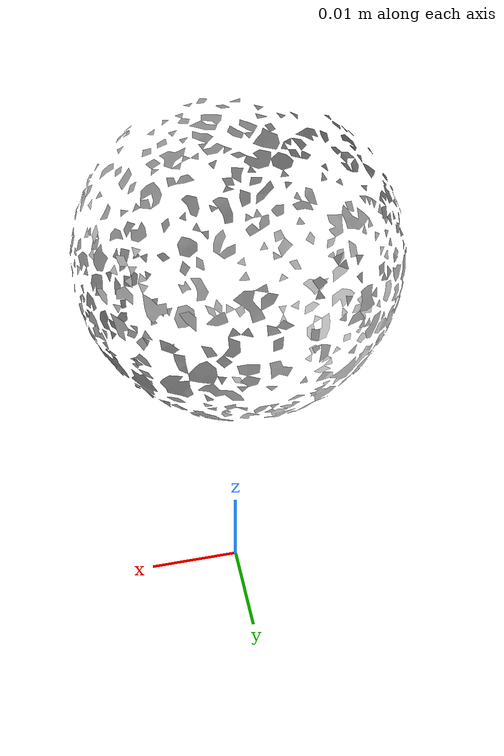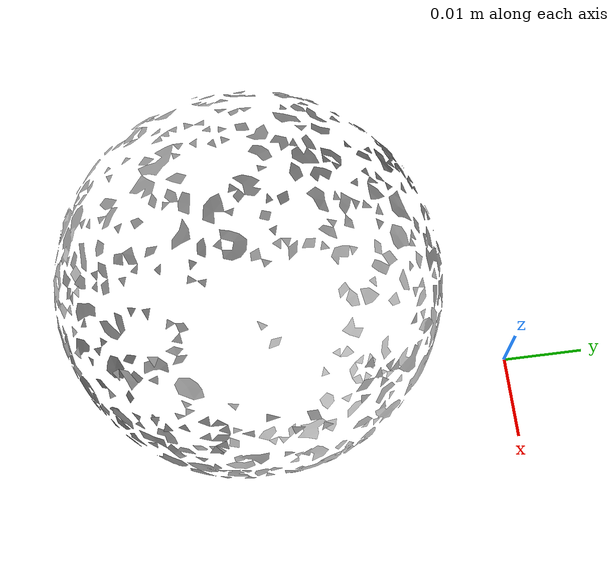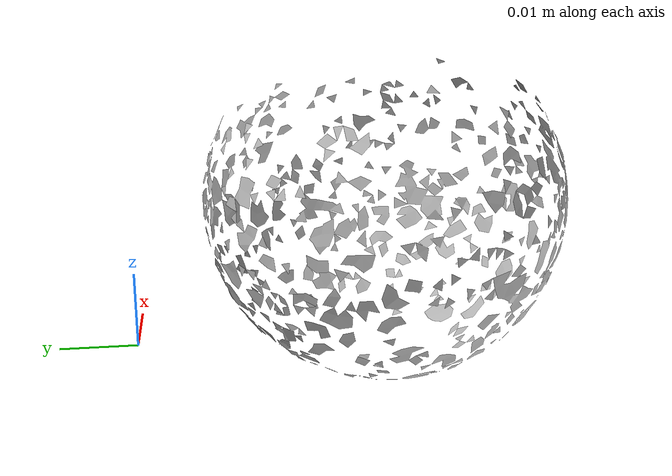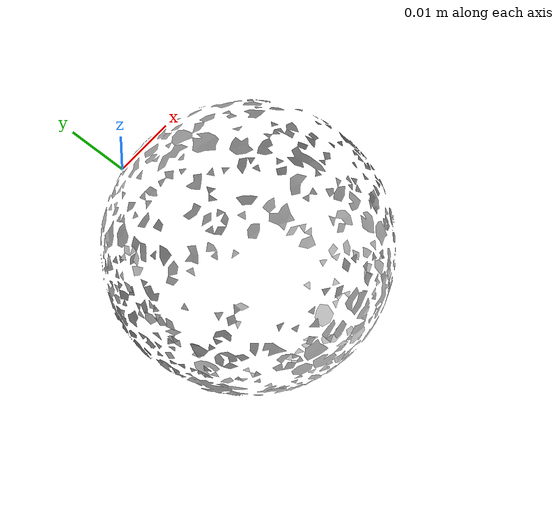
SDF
<?xml version="1.0" ?>
<sdf version="1.4">
  <model name='ycb_058_golf_ball'>
    <link name='body'>
      <inertial>
        <mass>0.046</mass>
        <pose>-0.00652885856019 -0.0304172970954 0.0209265300846 0 0 0</pose>
        <inertia>
          <ixx>8.30912102664e-06</ixx>
          <ixy>-8.04696433085e-10</ixy>
          <ixz>1.09164678613e-09</ixz>
          <iyy>8.31517367441e-06</iyy>
          <iyz>-1.99520248051e-09</iyz>
          <izz>8.33839495435e-06</izz>
        </inertia>
      </inertial>
      <visual name='ycb_058_golf_ball_visual'>
        <pose>0 0 0 0 0 0</pose>
        <geometry>
          <mesh>
            <uri>model://ycb_058_golf_ball/meshes/textured.dae</uri>
          </mesh>
        </geometry>
      </visual>
      <collision name='ycb_058_golf_ball_collision'>
        <pose>0 0 0 0 0 0</pose>
        <geometry>
          <mesh>
            <uri>model://ycb_058_golf_ball/meshes/nontextured.stl</uri>
          </mesh>
        </geometry>
        <max_contacts>10</max_contacts>
      </collision>
    </link>
  </model>
</sdf>
